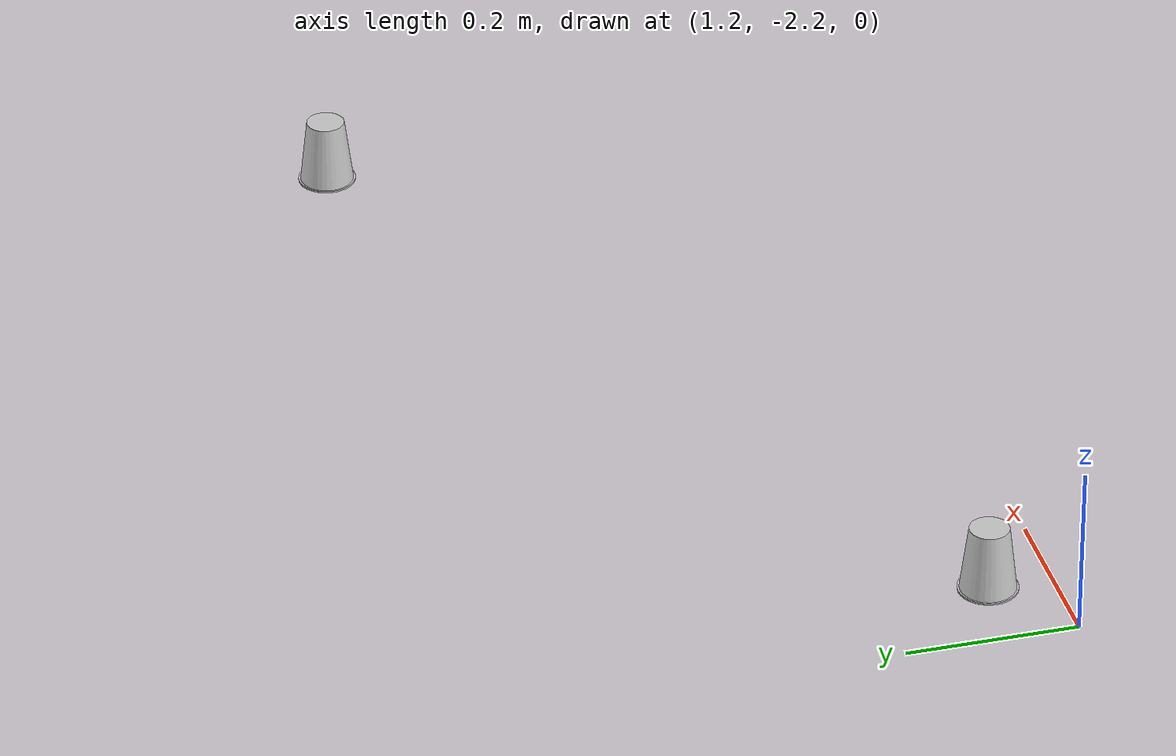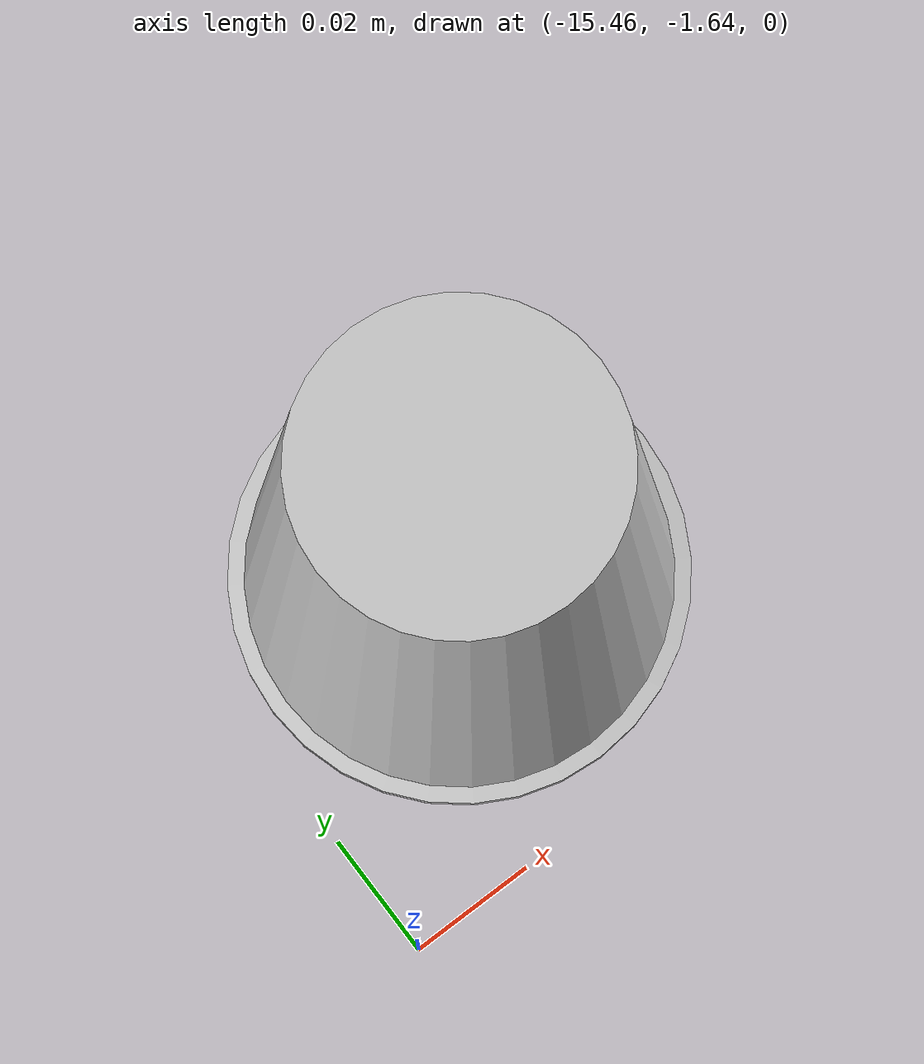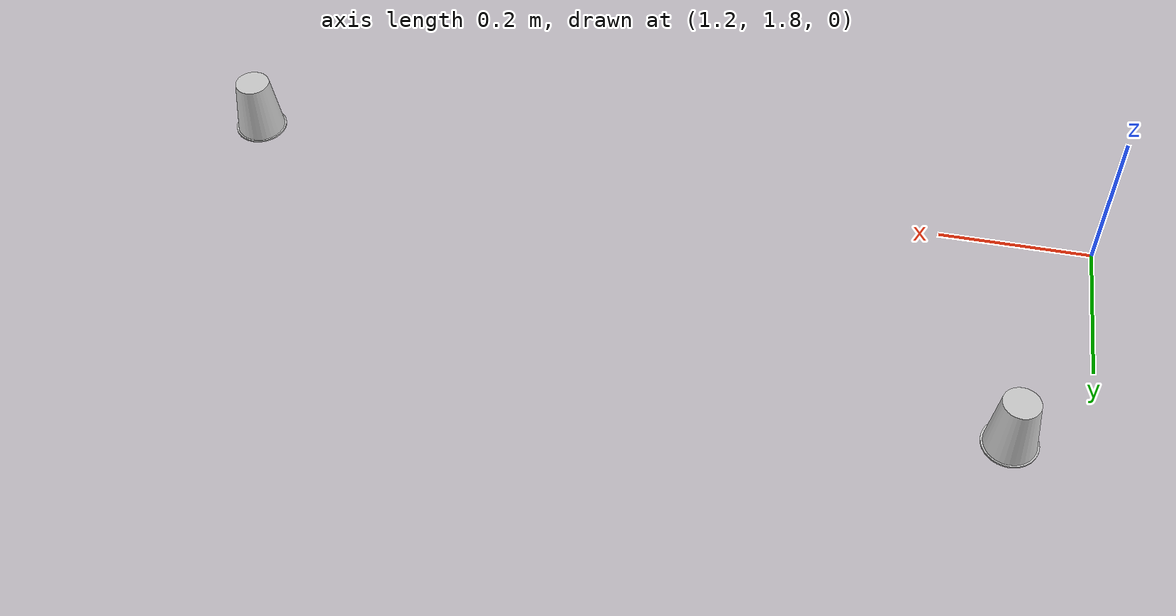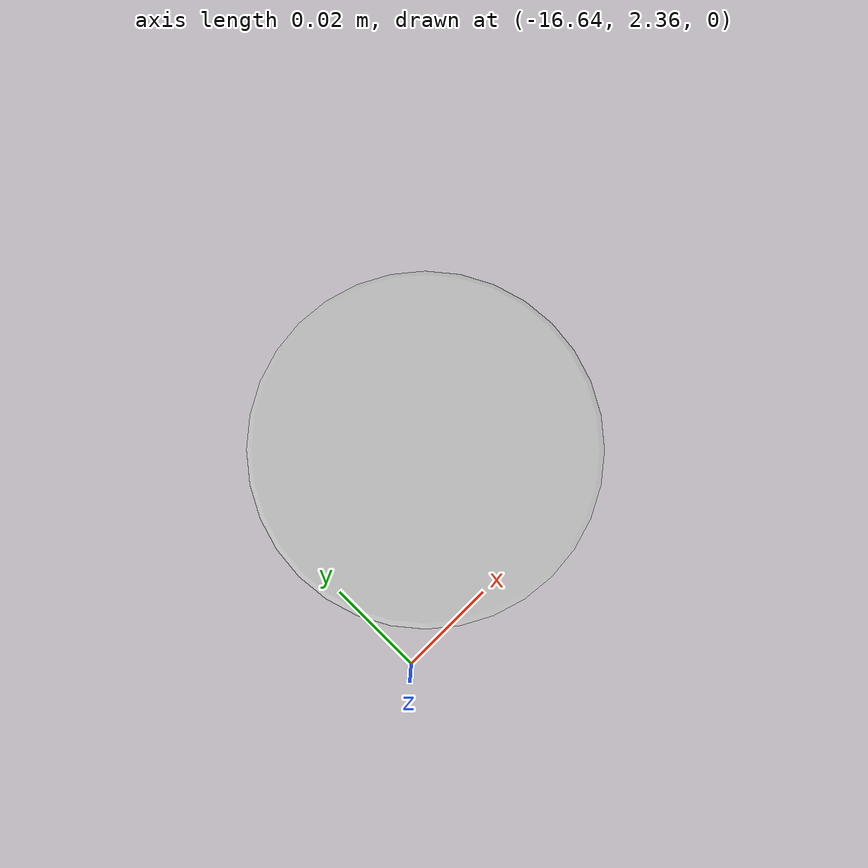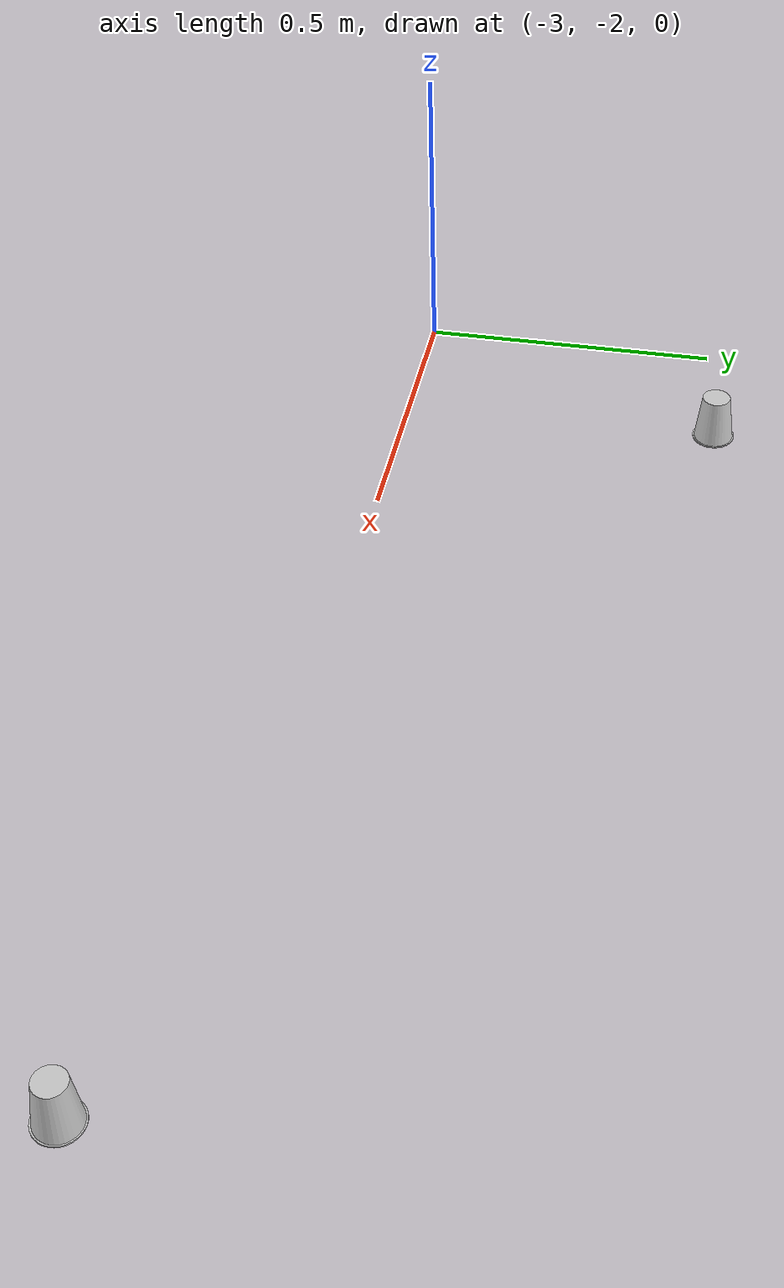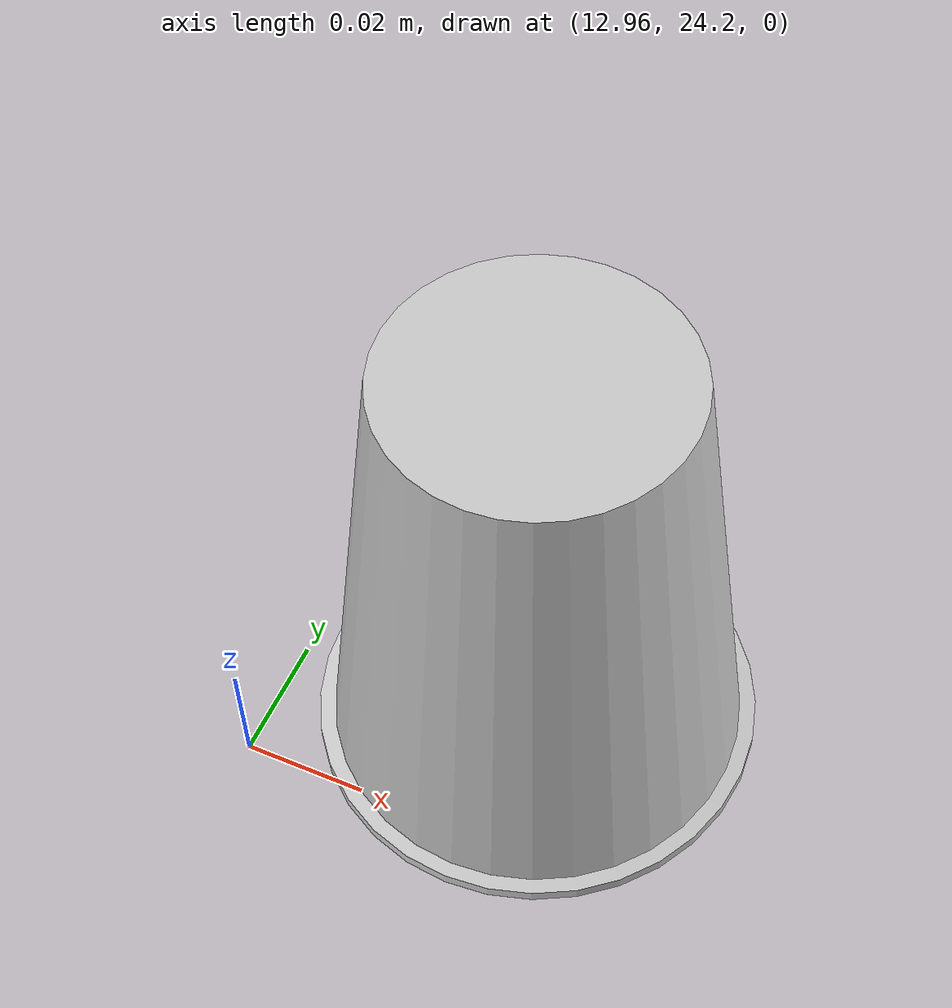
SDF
<?xml version='1.0' encoding='UTF-8'?>
<sdf version="1.4">
  <model name="some track">
    <include>
      <uri>model://cone_yellow</uri>
      <pose>4.381752989176836 -1.5874793920819543 0 0 0 0</pose>
      <name>cone_right</name>
    </include>
    <include>
      <uri>model://cone_yellow</uri>
      <pose>7.29730650670582 -1.743283919544522 0 0 0 0</pose>
      <name>cone_right</name>
    </include>
    <include>
      <uri>model://cone_yellow</uri>
      <pose>10.272491280851666 -1.9204334369314164 0 0 0 0</pose>
      <name>cone_right</name>
    </include>
    <include>
      <uri>model://cone_yellow</uri>
      <pose>13.293226006786705 -2.00916881493691 0 0 0 0</pose>
      <name>cone_right</name>
    </include>
    <include>
      <uri>model://cone_yellow</uri>
      <pose>16.335160642075486 -1.9072832656783385 0 0 0 0</pose>
      <name>cone_right</name>
    </include>
    <include>
      <uri>model://cone_yellow</uri>
      <pose>19.261569476138977 -1.7616984814657601 0 0 0 0</pose>
      <name>cone_right</name>
    </include>
    <include>
      <uri>model://cone_yellow</uri>
      <pose>22.118070576496052 -1.8872916590699904 0 0 0 0</pose>
      <name>cone_right</name>
    </include>
    <include>
      <uri>model://cone_yellow</uri>
      <pose>25.22616088652055 -2.0879519925181067 0 0 0 0</pose>
      <name>cone_right</name>
    </include>
    <include>
      <uri>model://cone_yellow</uri>
      <pose>28.56338289007518 -1.4906872783281069 0 0 0 0</pose>
      <name>cone_right</name>
    </include>
    <include>
      <uri>model://cone_yellow</uri>
      <pose>31.53730974447685 0.7137999069921743 0 0 0 0</pose>
      <name>cone_right</name>
    </include>
    <include>
      <uri>model://cone_yellow</uri>
      <pose>33.467772265710366 3.731648925173728 0 0 0 0</pose>
      <name>cone_right</name>
    </include>
    <include>
      <uri>model://cone_yellow</uri>
      <pose>34.46608404643998 6.9384491211611445 0 0 0 0</pose>
      <name>cone_right</name>
    </include>
    <include>
      <uri>model://cone_yellow</uri>
      <pose>34.75651565038105 10.183817781232722 0 0 0 0</pose>
      <name>cone_right</name>
    </include>
    <include>
      <uri>model://cone_yellow</uri>
      <pose>34.62325438279323 13.431066111250646 0 0 0 0</pose>
      <name>cone_right</name>
    </include>
    <include>
      <uri>model://cone_yellow</uri>
      <pose>34.225315293976536 16.72024183458988 0 0 0 0</pose>
      <name>cone_right</name>
    </include>
    <include>
      <uri>model://cone_yellow</uri>
      <pose>33.33431127214808 19.94673489448203 0 0 0 0</pose>
      <name>cone_right</name>
    </include>
    <include>
      <uri>model://cone_yellow</uri>
      <pose>31.5699648082014 22.80916963481813 0 0 0 0</pose>
      <name>cone_right</name>
    </include>
    <include>
      <uri>model://cone_yellow</uri>
      <pose>28.700036791159416 24.816600644172723 0 0 0 0</pose>
      <name>cone_right</name>
    </include>
    <include>
      <uri>model://cone_yellow</uri>
      <pose>25.4234811301131 25.87074836239658 0 0 0 0</pose>
      <name>cone_right</name>
    </include>
    <include>
      <uri>model://cone_yellow</uri>
      <pose>22.21290451776893 26.442271673206722 0 0 0 0</pose>
      <name>cone_right</name>
    </include>
    <include>
      <uri>model://cone_yellow</uri>
      <pose>19.188274963897516 26.82342141637534 0 0 0 0</pose>
      <name>cone_right</name>
    </include>
    <include>
      <uri>model://cone_yellow</uri>
      <pose>16.261467752410994 27.130470101174396 0 0 0 0</pose>
      <name>cone_right</name>
    </include>
    <include>
      <uri>model://cone_yellow</uri>
      <pose>13.37664129707573 27.453930219541256 0 0 0 0</pose>
      <name>cone_right</name>
    </include>
    <include>
      <uri>model://cone_yellow</uri>
      <pose>10.457166111352668 27.821891867766904 0 0 0 0</pose>
      <name>cone_right</name>
    </include>
    <include>
      <uri>model://cone_yellow</uri>
      <pose>7.487746634539062 28.178611635948666 0 0 0 0</pose>
      <name>cone_right</name>
    </include>
    <include>
      <uri>model://cone_yellow</uri>
      <pose>4.483118864651564 28.458456366788475 0 0 0 0</pose>
      <name>cone_right</name>
    </include>
    <include>
      <uri>model://cone_yellow</uri>
      <pose>1.4581792713258939 28.59553574105817 0 0 0 0</pose>
      <name>cone_right</name>
    </include>
    <include>
      <uri>model://cone_yellow</uri>
      <pose>-1.5377708744720484 28.59410185879891 0 0 0 0</pose>
      <name>cone_right</name>
    </include>
    <include>
      <uri>model://cone_yellow</uri>
      <pose>-4.502903752160252 28.55486691732785 0 0 0 0</pose>
      <name>cone_right</name>
    </include>
    <include>
      <uri>model://cone_yellow</uri>
      <pose>-7.474602143568949 28.580260213567293 0 0 0 0</pose>
      <name>cone_right</name>
    </include>
    <include>
      <uri>model://cone_yellow</uri>
      <pose>-10.546659823669954 28.640463878562088 0 0 0 0</pose>
      <name>cone_right</name>
    </include>
    <include>
      <uri>model://cone_yellow</uri>
      <pose>-13.712947146812775 28.452574169817435 0 0 0 0</pose>
      <name>cone_right</name>
    </include>
    <include>
      <uri>model://cone_yellow</uri>
      <pose>-16.868080963588252 27.6548834737444 0 0 0 0</pose>
      <name>cone_right</name>
    </include>
    <include>
      <uri>model://cone_yellow</uri>
      <pose>-19.797604394135988 25.9133198538295 0 0 0 0</pose>
      <name>cone_right</name>
    </include>
    <include>
      <uri>model://cone_yellow</uri>
      <pose>-22.168827621949823 23.431355085657444 0 0 0 0</pose>
      <name>cone_right</name>
    </include>
    <include>
      <uri>model://cone_yellow</uri>
      <pose>-23.920732153944574 20.51265546453981 0 0 0 0</pose>
      <name>cone_right</name>
    </include>
    <include>
      <uri>model://cone_yellow</uri>
      <pose>-25.019907085821465 17.369677313298702 0 0 0 0</pose>
      <name>cone_right</name>
    </include>
    <include>
      <uri>model://cone_yellow</uri>
      <pose>-25.475393860496013 14.118893194188582 0 0 0 0</pose>
      <name>cone_right</name>
    </include>
    <include>
      <uri>model://cone_yellow</uri>
      <pose>-25.31186750614602 10.853161637774049 0 0 0 0</pose>
      <name>cone_right</name>
    </include>
    <include>
      <uri>model://cone_yellow</uri>
      <pose>-24.535141579669233 7.658928508136577 0 0 0 0</pose>
      <name>cone_right</name>
    </include>
    <include>
      <uri>model://cone_yellow</uri>
      <pose>-23.132051869417253 4.638669953792793 0 0 0 0</pose>
      <name>cone_right</name>
    </include>
    <include>
      <uri>model://cone_yellow</uri>
      <pose>-21.10472544651545 1.9270007947982704 0 0 0 0</pose>
      <name>cone_right</name>
    </include>
    <include>
      <uri>model://cone_yellow</uri>
      <pose>-18.51308182420568 -0.24540654032724585 0 0 0 0</pose>
      <name>cone_right</name>
    </include>
    <include>
      <uri>model://cone_yellow</uri>
      <pose>-15.421089687591028 -1.5986600564566529 0 0 0 0</pose>
      <name>cone_right</name>
    </include>
    <include>
      <uri>model://cone_yellow</uri>
      <pose>-12.130275894975773 -2.060641664479164 0 0 0 0</pose>
      <name>cone_right</name>
    </include>
    <include>
      <uri>model://cone_yellow</uri>
      <pose>-8.867170528372405 -1.970026614992841 0 0 0 0</pose>
      <name>cone_right</name>
    </include>
    <include>
      <uri>model://cone_yellow</uri>
      <pose>-5.717210106821646 -1.6748570624731722 0 0 0 0</pose>
      <name>cone_right</name>
    </include>
    <include>
      <uri>model://cone_yellow</uri>
      <pose>-2.7725885712050586 -1.4718731140758572 0 0 0 0</pose>
      <name>cone_right</name>
    </include>
    <include>
      <uri>model://cone_yellow</uri>
      <pose>2.3608062761957385 -1.6086919357844565 0 0 0 0</pose>
      <name>cone_right</name>
    </include>
    <include>
      <uri>model://cone_blue</uri>
      <pose>4.464892400369858 1.6614570243944404 0 0 0 0</pose>
      <name>cone_left</name>
    </include>
    <include>
      <uri>model://cone_blue</uri>
      <pose>7.4899396057359455 1.5010022098155333 0 0 0 0</pose>
      <name>cone_left</name>
    </include>
    <include>
      <uri>model://cone_blue</uri>
      <pose>10.456012211462754 1.3243808979770755 0 0 0 0</pose>
      <name>cone_left</name>
    </include>
    <include>
      <uri>model://cone_blue</uri>
      <pose>13.348380339309157 1.2403631513013056 0 0 0 0</pose>
      <name>cone_left</name>
    </include>
    <include>
      <uri>model://cone_blue</uri>
      <pose>16.168492785822963 1.3384403555950732 0 0 0 0</pose>
      <name>cone_left</name>
    </include>
    <include>
      <uri>model://cone_blue</uri>
      <pose>19.134014684137167 1.485797442324965 0 0 0 0</pose>
      <name>cone_left</name>
    </include>
    <include>
      <uri>model://cone_blue</uri>
      <pose>22.357193650596997 1.353899503979871 0 0 0 0</pose>
      <name>cone_left</name>
    </include>
    <include>
      <uri>model://cone_blue</uri>
      <pose>25.353947006130173 1.1595348369602079 0 0 0 0</pose>
      <name>cone_left</name>
    </include>
    <include>
      <uri>model://cone_blue</uri>
      <pose>27.6276348955513 1.621687328100968 0 0 0 0</pose>
      <name>cone_left</name>
    </include>
    <include>
      <uri>model://cone_blue</uri>
      <pose>29.269042541682666 3.041344513810322 0 0 0 0</pose>
      <name>cone_left</name>
    </include>
    <include>
      <uri>model://cone_blue</uri>
      <pose>30.593665799831218 5.248887213245742 0 0 0 0</pose>
      <name>cone_left</name>
    </include>
    <include>
      <uri>model://cone_blue</uri>
      <pose>31.303440945915252 7.68690661407797 0 0 0 0</pose>
      <name>cone_left</name>
    </include>
    <include>
      <uri>model://cone_blue</uri>
      <pose>31.509388679226788 10.320442937051688 0 0 0 0</pose>
      <name>cone_left</name>
    </include>
    <include>
      <uri>model://cone_blue</uri>
      <pose>31.379815984195922 13.224650621268596 0 0 0 0</pose>
      <name>cone_left</name>
    </include>
    <include>
      <uri>model://cone_blue</uri>
      <pose>31.009911491184734 16.24729534185312 0 0 0 0</pose>
      <name>cone_left</name>
    </include>
    <include>
      <uri>model://cone_blue</uri>
      <pose>30.25583574023131 18.904867148849338 0 0 0 0</pose>
      <name>cone_left</name>
    </include>
    <include>
      <uri>model://cone_blue</uri>
      <pose>29.002237023657703 20.816865936964238 0 0 0 0</pose>
      <name>cone_left</name>
    </include>
    <include>
      <uri>model://cone_blue</uri>
      <pose>27.160250698499194 21.954510710426725 0 0 0 0</pose>
      <name>cone_left</name>
    </include>
    <include>
      <uri>model://cone_blue</uri>
      <pose>24.602851643335587 22.726059626538724 0 0 0 0</pose>
      <name>cone_left</name>
    </include>
    <include>
      <uri>model://cone_blue</uri>
      <pose>21.70575629671625 23.232084656554402 0 0 0 0</pose>
      <name>cone_left</name>
    </include>
    <include>
      <uri>model://cone_blue</uri>
      <pose>18.810435578616374 23.59545961379304 0 0 0 0</pose>
      <name>cone_left</name>
    </include>
    <include>
      <uri>model://cone_blue</uri>
      <pose>15.927882233799806 23.897635323185746 0 0 0 0</pose>
      <name>cone_left</name>
    </include>
    <include>
      <uri>model://cone_blue</uri>
      <pose>12.998748268734056 24.22597469643832 0 0 0 0</pose>
      <name>cone_left</name>
    </include>
    <include>
      <uri>model://cone_blue</uri>
      <pose>10.047074412426907 24.59786879116336 0 0 0 0</pose>
      <name>cone_left</name>
    </include>
    <include>
      <uri>model://cone_blue</uri>
      <pose>7.113245675982783 24.95026081361841 0 0 0 0</pose>
      <name>cone_left</name>
    </include>
    <include>
      <uri>model://cone_blue</uri>
      <pose>4.212456043607709 25.219746494431185 0 0 0 0</pose>
      <name>cone_left</name>
    </include>
    <include>
      <uri>model://cone_blue</uri>
      <pose>1.3585856322073127 25.347062083007806 0 0 0 0</pose>
      <name>cone_left</name>
    </include>
    <include>
      <uri>model://cone_blue</uri>
      <pose>-1.510890900012346 25.344213019627173 0 0 0 0</pose>
      <name>cone_left</name>
    </include>
    <include>
      <uri>model://cone_blue</uri>
      <pose>-4.463998698459887 25.305099787702012 0 0 0 0</pose>
      <name>cone_left</name>
    </include>
    <include>
      <uri>model://cone_blue</uri>
      <pose>-7.5319474147583145 25.330766172970783 0 0 0 0</pose>
      <name>cone_left</name>
    </include>
    <include>
      <uri>model://cone_blue</uri>
      <pose>-10.586590054353346 25.39070918371548 0 0 0 0</pose>
      <name>cone_left</name>
    </include>
    <include>
      <uri>model://cone_blue</uri>
      <pose>-13.40823779051106 25.21688997506323 0 0 0 0</pose>
      <name>cone_left</name>
    </include>
    <include>
      <uri>model://cone_blue</uri>
      <pose>-15.855594976546476 24.566619863551118 0 0 0 0</pose>
      <name>cone_left</name>
    </include>
    <include>
      <uri>model://cone_blue</uri>
      <pose>-17.901691367130695 23.273620288721446 0 0 0 0</pose>
      <name>cone_left</name>
    </include>
    <include>
      <uri>model://cone_blue</uri>
      <pose>-19.673858245858888 21.348657841128514 0 0 0 0</pose>
      <name>cone_left</name>
    </include>
    <include>
      <uri>model://cone_blue</uri>
      <pose>-21.04291274319095 19.002471555510958 0 0 0 0</pose>
      <name>cone_left</name>
    </include>
    <include>
      <uri>model://cone_blue</uri>
      <pose>-21.89735776475542 16.468463832757053 0 0 0 0</pose>
      <name>cone_left</name>
    </include>
    <include>
      <uri>model://cone_blue</uri>
      <pose>-22.2374864408417 13.8387940300564 0 0 0 0</pose>
      <name>cone_left</name>
    </include>
    <include>
      <uri>model://cone_blue</uri>
      <pose>-22.078393392970245 11.180491989898842 0 0 0 0</pose>
      <name>cone_left</name>
    </include>
    <include>
      <uri>model://cone_blue</uri>
      <pose>-21.421609286596674 8.590817267589307 0 0 0 0</pose>
      <name>cone_left</name>
    </include>
    <include>
      <uri>model://cone_blue</uri>
      <pose>-20.26439942561086 6.168071621612996 0 0 0 0</pose>
      <name>cone_left</name>
    </include>
    <include>
      <uri>model://cone_blue</uri>
      <pose>-18.620788345886883 4.022843460677786 0 0 0 0</pose>
      <name>cone_left</name>
    </include>
    <include>
      <uri>model://cone_blue</uri>
      <pose>-16.60828654360603 2.387890810714847 0 0 0 0</pose>
      <name>cone_left</name>
    </include>
    <include>
      <uri>model://cone_blue</uri>
      <pose>-14.389579986507492 1.483301613741495 0 0 0 0</pose>
      <name>cone_left</name>
    </include>
    <include>
      <uri>model://cone_blue</uri>
      <pose>-11.878558628352296 1.1795957369597496 0 0 0 0</pose>
      <name>cone_left</name>
    </include>
    <include>
      <uri>model://cone_blue</uri>
      <pose>-9.054347797840766 1.274578857139999 0 0 0 0</pose>
      <name>cone_left</name>
    </include>
    <include>
      <uri>model://cone_blue</uri>
      <pose>-6.036842630251996 1.559387060960547 0 0 0 0</pose>
      <name>cone_left</name>
    </include>
    <include>
      <uri>model://cone_blue</uri>
      <pose>-2.93918083902425 1.773854387779907 0 0 0 0</pose>
      <name>cone_left</name>
    </include>
    <include>
      <uri>model://cone_blue</uri>
      <pose>2.3608062761957385 1.7671412636525972 0 0 0 0</pose>
      <name>cone_left</name>
    </include>
    <include>
      <uri>model://cone_orange_big</uri>
      <pose>-1.3 2.125 0 0 0 0</pose>
      <name>cone_orange_big</name>
    </include>
    <include>
      <uri>model://cone_orange_big</uri>
      <pose>-1.3 -2.125 0 0 0 0</pose>
      <name>cone_orange_big</name>
    </include>
    <include>
      <uri>model://cone_orange_big</uri>
      <pose>1.3 2.125 0 0 0 0</pose>
      <name>cone_orange_big</name>
    </include>
    <include>
      <uri>model://cone_orange_big</uri>
      <pose>1.3 -2.125 0 0 0 0</pose>
      <name>cone_orange_big</name>
    </include>
  </model>
</sdf>

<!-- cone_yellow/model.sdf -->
<sdf version='1.4'>
  <model name="cone_yellow">
    <link name="link">
    <collision name="collision"><geometry><box><size> 0.05 0.05 0.01</size>
             </box></geometry></collision>
      <visual name="visual">
        <geometry>
          <mesh>
            <uri>model://cup.dae</uri>
            <scale>1 1 1</scale>
          </mesh>
        </geometry>
        <material>
            <script>
              <uri>model://cone_yellow/materials/scripts</uri>
              <uri>model://cone_yellow/materials/textures</uri>
              <name>cone_yellow/Image</name>
            </script>
        </material>
      </visual>
    </link>
  </model>
</sdf>

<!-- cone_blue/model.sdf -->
<sdf version='1.4'>
  <model name="cone_blue">
    <link name="link">
    <collision name="collision"><geometry><box><size> 0.05 0.05 0.01</size>
             </box></geometry></collision>
      <visual name="visual">
        <geometry>
          <mesh>
            <uri>model://cup.dae</uri>
            <scale>1 1 1</scale>
          </mesh>
        </geometry>
        <material>
            <script>
              <uri>model://cone_blue/materials/scripts</uri>
              <uri>model://cone_blue/materials/textures</uri>
              <name>cone_blue/Image</name>
            </script>
        </material>
      </visual>
    </link>
  </model>
</sdf>

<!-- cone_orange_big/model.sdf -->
<sdf version='1.4'>
  <model name="cone_orange_big">
    <link name="link">
    <collision name="collision"><geometry><box><size> 0.05 0.05 0.01</size>
             </box></geometry></collision>
      <visual name="visual">
        <geometry>
          <mesh>
            <uri>model://cup.dae</uri>
            <scale>1 1 1</scale>
          </mesh>
        </geometry>
        <material>
            <script>
              <uri>model://cone_orange_big/materials/scripts</uri>
              <uri>model://cone_orange_big/materials/textures</uri>
              <name>cone_orange_big/Image</name>
            </script>
        </material>
      </visual>
    </link>
  </model>
</sdf>
